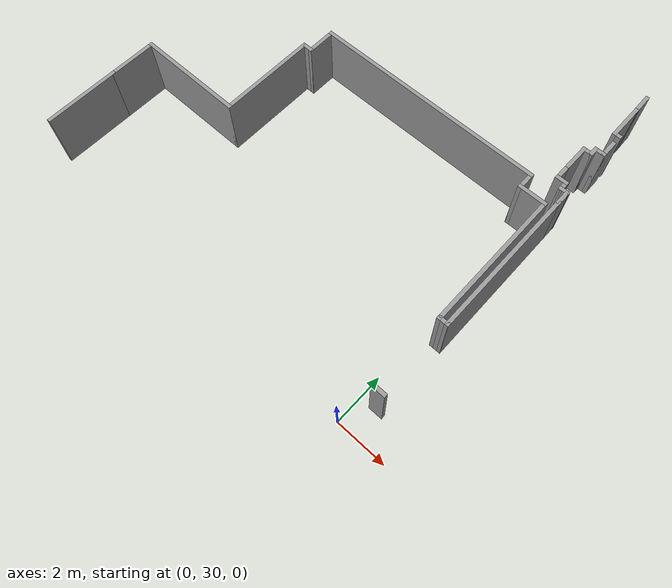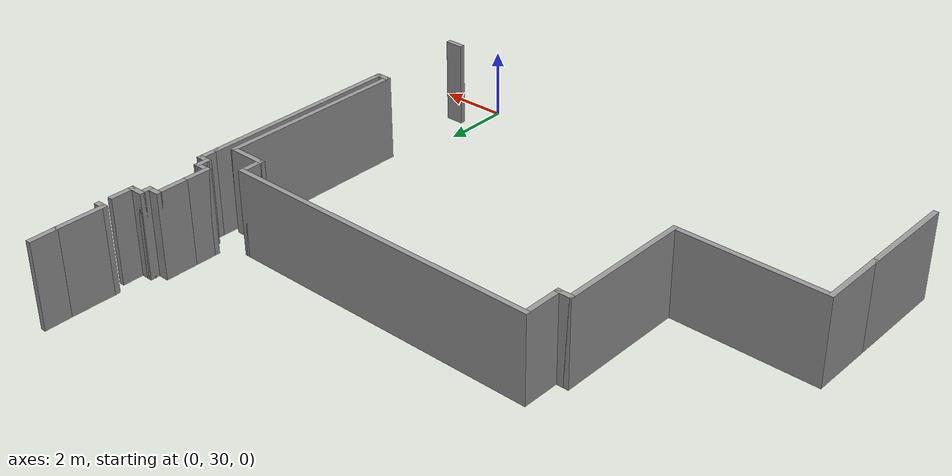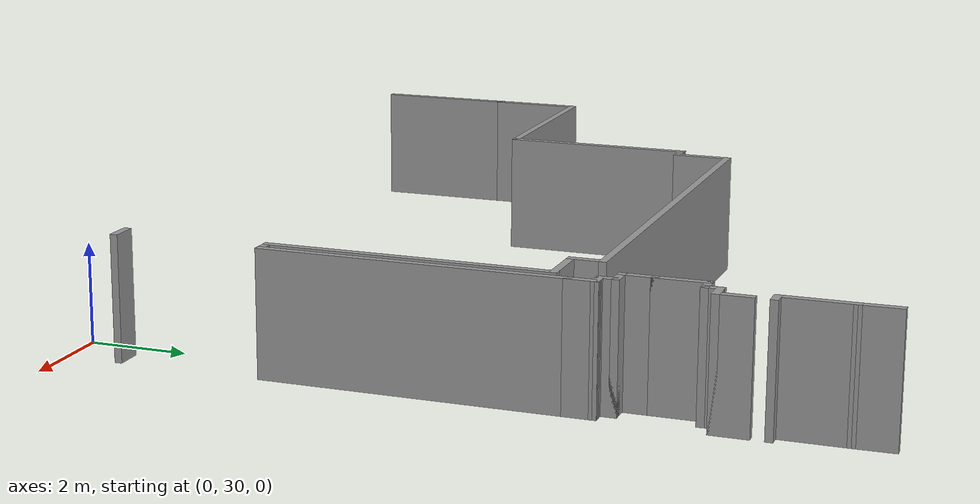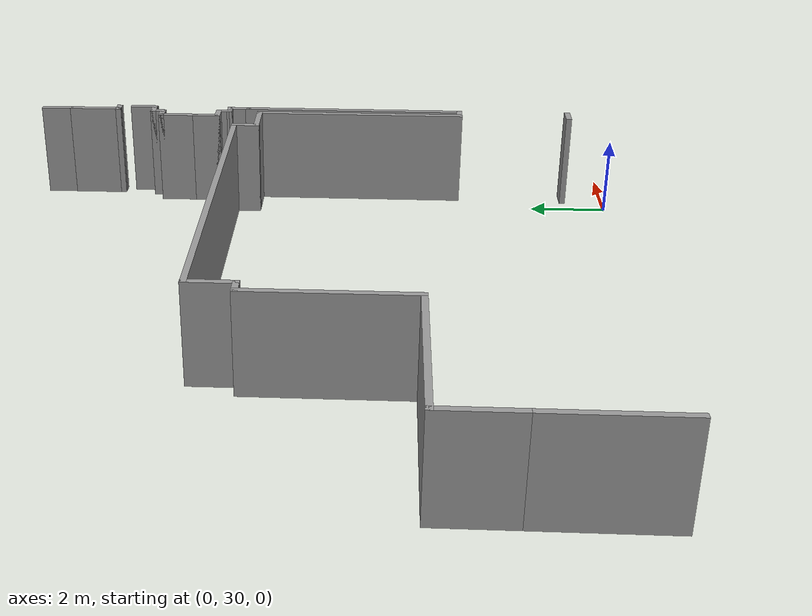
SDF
<sdf version="1.6">
 <model name="volen.world">
  <link name="Wall_303">
   <pose>0.69523 31.1034 0 0 -0 3.14159</pose>
   <visual name="Wall_303_Visual">
    <pose>0 0 1.25 0 -0 0</pose>
    <geometry><box><size>0.55 0.15 2.5</size></box></geometry>
    <material>
     <script><uri>file://media/materials/scripts/gazebo.material</uri><name>Gazebo/Grey</name></script>
     <ambient>1 1 1 1</ambient>
     <diffuse>0.7 0.7 0.7 1</diffuse>
     <specular>0.01 0.01 0.01 1</specular>
     <emissive>0 0 0 1</emissive>
    </material>
   </visual>
   <collision name="Wall_303_Collision">
    <pose>0 0 1.25 0 -0 0</pose>
    <geometry><box><size>0.55 0.15 2.5</size></box></geometry>
    <surface>
     <friction>
      <ode><mu>1</mu><mu2>1</mu2><fdir1>0 0 0</fdir1><slip1>0</slip1><slip2>0</slip2></ode>
      <torsional>
       <coefficient>1</coefficient>
       <patch_radius>0</patch_radius>
       <surface_radius>0</surface_radius>
       <use_patch_radius>1</use_patch_radius>
       <ode><slip>0</slip></ode>
      </torsional>
     </friction>
     <bounce><restitution_coefficient>0</restitution_coefficient><threshold>1e+06</threshold></bounce>
     <contact>
      <collide_without_contact>0</collide_without_contact>
      <collide_without_contact_bitmask>1</collide_without_contact_bitmask>
      <collide_bitmask>1</collide_bitmask>
      <ode>
       <soft_cfm>0</soft_cfm>
       <soft_erp>0.2</soft_erp>
       <kp>1e+13</kp>
       <kd>1</kd>
       <max_vel>0.01</max_vel>
       <min_depth>0</min_depth>
      </ode>
      <bullet>
       <split_impulse>1</split_impulse>
       <split_impulse_penetration_threshold>-0.01</split_impulse_penetration_threshold>
       <soft_cfm>0</soft_cfm>
       <soft_erp>0.2</soft_erp>
       <kp>1e+13</kp>
       <kd>1</kd>
      </bullet>
     </contact>
    </surface>
   </collision>
  </link>
  <link name="Wall_338">
   <pose>-14.3448 31.9614 0 0 -0 1.5708</pose>
   <visual name="Wall_338_Visual">
    <pose>0 0 1.25 0 -0 0</pose>
    <geometry><box><size>3 0.15 2.5</size></box></geometry>
    <material>
     <script><uri>file://media/materials/scripts/gazebo.material</uri><name>Gazebo/Grey</name></script>
     <ambient>1 1 1 1</ambient>
     <diffuse>0.7 0.7 0.7 1</diffuse>
     <specular>0.01 0.01 0.01 1</specular>
     <emissive>0 0 0 1</emissive>
    </material>
   </visual>
   <collision name="Wall_338_Collision">
    <pose>0 0 1.25 0 -0 0</pose>
    <geometry><box><size>3 0.15 2.5</size></box></geometry>
    <surface>
     <friction>
      <ode><mu>1</mu><mu2>1</mu2><fdir1>0 0 0</fdir1><slip1>0</slip1><slip2>0</slip2></ode>
      <torsional>
       <coefficient>1</coefficient>
       <patch_radius>0</patch_radius>
       <surface_radius>0</surface_radius>
       <use_patch_radius>1</use_patch_radius>
       <ode><slip>0</slip></ode>
      </torsional>
     </friction>
     <bounce><restitution_coefficient>0</restitution_coefficient><threshold>1e+06</threshold></bounce>
     <contact>
      <collide_without_contact>0</collide_without_contact>
      <collide_without_contact_bitmask>1</collide_without_contact_bitmask>
      <collide_bitmask>1</collide_bitmask>
      <ode>
       <soft_cfm>0</soft_cfm>
       <soft_erp>0.2</soft_erp>
       <kp>1e+13</kp>
       <kd>1</kd>
       <max_vel>0.01</max_vel>
       <min_depth>0</min_depth>
      </ode>
      <bullet>
       <split_impulse>1</split_impulse>
       <split_impulse_penetration_threshold>-0.01</split_impulse_penetration_threshold>
       <soft_cfm>0</soft_cfm>
       <soft_erp>0.2</soft_erp>
       <kp>1e+13</kp>
       <kd>1</kd>
      </bullet>
     </contact>
    </surface>
   </collision>
  </link>
  <link name="Wall_340">
   <pose>-14.3448 34.3049 0 0 -0 1.5708</pose>
   <visual name="Wall_340_Visual">
    <pose>0 0 1.25 0 -0 0</pose>
    <geometry><box><size>1.98692 0.15 2.5</size></box></geometry>
    <material>
     <script><uri>file://media/materials/scripts/gazebo.material</uri><name>Gazebo/Grey</name></script>
     <ambient>1 1 1 1</ambient>
     <diffuse>0.7 0.7 0.7 1</diffuse>
     <specular>0.01 0.01 0.01 1</specular>
     <emissive>0 0 0 1</emissive>
    </material>
   </visual>
   <collision name="Wall_340_Collision">
    <pose>0 0 1.25 0 -0 0</pose>
    <geometry><box><size>1.98692 0.15 2.5</size></box></geometry>
    <surface>
     <friction>
      <ode><mu>1</mu><mu2>1</mu2><fdir1>0 0 0</fdir1><slip1>0</slip1><slip2>0</slip2></ode>
      <torsional>
       <coefficient>1</coefficient>
       <patch_radius>0</patch_radius>
       <surface_radius>0</surface_radius>
       <use_patch_radius>1</use_patch_radius>
       <ode><slip>0</slip></ode>
      </torsional>
     </friction>
     <bounce><restitution_coefficient>0</restitution_coefficient><threshold>1e+06</threshold></bounce>
     <contact>
      <collide_without_contact>0</collide_without_contact>
      <collide_without_contact_bitmask>1</collide_without_contact_bitmask>
      <collide_bitmask>1</collide_bitmask>
      <ode>
       <soft_cfm>0</soft_cfm>
       <soft_erp>0.2</soft_erp>
       <kp>1e+13</kp>
       <kd>1</kd>
       <max_vel>0.01</max_vel>
       <min_depth>0</min_depth>
      </ode>
      <bullet>
       <split_impulse>1</split_impulse>
       <split_impulse_penetration_threshold>-0.01</split_impulse_penetration_threshold>
       <soft_cfm>0</soft_cfm>
       <soft_erp>0.2</soft_erp>
       <kp>1e+13</kp>
       <kd>1</kd>
      </bullet>
     </contact>
    </surface>
   </collision>
  </link>
  <link name="Wall_341">
   <pose>-12.2248 35.2234 0 0 -0 0</pose>
   <visual name="Wall_341_Visual">
    <pose>0 0 1.25 0 -0 0</pose>
    <geometry><box><size>4.39 0.15 2.5</size></box></geometry>
    <material>
     <script><uri>file://media/materials/scripts/gazebo.material</uri><name>Gazebo/Grey</name></script>
     <ambient>1 1 1 1</ambient>
     <diffuse>0.7 0.7 0.7 1</diffuse>
     <specular>0.01 0.01 0.01 1</specular>
     <emissive>0 0 0 1</emissive>
    </material>
   </visual>
   <collision name="Wall_341_Collision">
    <pose>0 0 1.25 0 -0 0</pose>
    <geometry><box><size>4.39 0.15 2.5</size></box></geometry>
    <surface>
     <friction>
      <ode><mu>1</mu><mu2>1</mu2><fdir1>0 0 0</fdir1><slip1>0</slip1><slip2>0</slip2></ode>
      <torsional>
       <coefficient>1</coefficient>
       <patch_radius>0</patch_radius>
       <surface_radius>0</surface_radius>
       <use_patch_radius>1</use_patch_radius>
       <ode><slip>0</slip></ode>
      </torsional>
     </friction>
     <bounce><restitution_coefficient>0</restitution_coefficient><threshold>1e+06</threshold></bounce>
     <contact>
      <collide_without_contact>0</collide_without_contact>
      <collide_without_contact_bitmask>1</collide_without_contact_bitmask>
      <collide_bitmask>1</collide_bitmask>
      <ode>
       <soft_cfm>0</soft_cfm>
       <soft_erp>0.2</soft_erp>
       <kp>1e+13</kp>
       <kd>1</kd>
       <max_vel>0.01</max_vel>
       <min_depth>0</min_depth>
      </ode>
      <bullet>
       <split_impulse>1</split_impulse>
       <split_impulse_penetration_threshold>-0.01</split_impulse_penetration_threshold>
       <soft_cfm>0</soft_cfm>
       <soft_erp>0.2</soft_erp>
       <kp>1e+13</kp>
       <kd>1</kd>
      </bullet>
     </contact>
    </surface>
   </collision>
  </link>
  <link name="Wall_343">
   <pose>-10.1048 37.1484 0 0 -0 1.5708</pose>
   <visual name="Wall_343_Visual">
    <pose>0 0 1.25 0 -0 0</pose>
    <geometry><box><size>4 0.15 2.5</size></box></geometry>
    <material>
     <script><uri>file://media/materials/scripts/gazebo.material</uri><name>Gazebo/Grey</name></script>
     <ambient>1 1 1 1</ambient>
     <diffuse>0.7 0.7 0.7 1</diffuse>
     <specular>0.01 0.01 0.01 1</specular>
     <emissive>0 0 0 1</emissive>
    </material>
   </visual>
   <collision name="Wall_343_Collision">
    <pose>0 0 1.25 0 -0 0</pose>
    <geometry><box><size>4 0.15 2.5</size></box></geometry>
    <surface>
     <friction>
      <ode><mu>1</mu><mu2>1</mu2><fdir1>0 0 0</fdir1><slip1>0</slip1><slip2>0</slip2></ode>
      <torsional>
       <coefficient>1</coefficient>
       <patch_radius>0</patch_radius>
       <surface_radius>0</surface_radius>
       <use_patch_radius>1</use_patch_radius>
       <ode><slip>0</slip></ode>
      </torsional>
     </friction>
     <bounce><restitution_coefficient>0</restitution_coefficient><threshold>1e+06</threshold></bounce>
     <contact>
      <collide_without_contact>0</collide_without_contact>
      <collide_without_contact_bitmask>1</collide_without_contact_bitmask>
      <collide_bitmask>1</collide_bitmask>
      <ode>
       <soft_cfm>0</soft_cfm>
       <soft_erp>0.2</soft_erp>
       <kp>1e+13</kp>
       <kd>1</kd>
       <max_vel>0.01</max_vel>
       <min_depth>0</min_depth>
      </ode>
      <bullet>
       <split_impulse>1</split_impulse>
       <split_impulse_penetration_threshold>-0.01</split_impulse_penetration_threshold>
       <soft_cfm>0</soft_cfm>
       <soft_erp>0.2</soft_erp>
       <kp>1e+13</kp>
       <kd>1</kd>
      </bullet>
     </contact>
    </surface>
   </collision>
  </link>
  <link name="Wall_344">
   <pose>-9.92977 39.0734 0 0 -0 0</pose>
   <visual name="Wall_344_Visual">
    <pose>0 0 1.25 0 -0 0</pose>
    <geometry><box><size>0.5 0.15 2.5</size></box></geometry>
    <material>
     <script><uri>file://media/materials/scripts/gazebo.material</uri><name>Gazebo/Grey</name></script>
     <ambient>1 1 1 1</ambient>
     <diffuse>0.7 0.7 0.7 1</diffuse>
     <specular>0.01 0.01 0.01 1</specular>
     <emissive>0 0 0 1</emissive>
    </material>
   </visual>
   <collision name="Wall_344_Collision">
    <pose>0 0 1.25 0 -0 0</pose>
    <geometry><box><size>0.5 0.15 2.5</size></box></geometry>
    <surface>
     <friction>
      <ode><mu>1</mu><mu2>1</mu2><fdir1>0 0 0</fdir1><slip1>0</slip1><slip2>0</slip2></ode>
      <torsional>
       <coefficient>1</coefficient>
       <patch_radius>0</patch_radius>
       <surface_radius>0</surface_radius>
       <use_patch_radius>1</use_patch_radius>
       <ode><slip>0</slip></ode>
      </torsional>
     </friction>
     <bounce><restitution_coefficient>0</restitution_coefficient><threshold>1e+06</threshold></bounce>
     <contact>
      <collide_without_contact>0</collide_without_contact>
      <collide_without_contact_bitmask>1</collide_without_contact_bitmask>
      <collide_bitmask>1</collide_bitmask>
      <ode>
       <soft_cfm>0</soft_cfm>
       <soft_erp>0.2</soft_erp>
       <kp>1e+13</kp>
       <kd>1</kd>
       <max_vel>0.01</max_vel>
       <min_depth>0</min_depth>
      </ode>
      <bullet>
       <split_impulse>1</split_impulse>
       <split_impulse_penetration_threshold>-0.01</split_impulse_penetration_threshold>
       <soft_cfm>0</soft_cfm>
       <soft_erp>0.2</soft_erp>
       <kp>1e+13</kp>
       <kd>1</kd>
      </bullet>
     </contact>
    </surface>
   </collision>
  </link>
  <link name="Wall_345">
   <pose>-9.75477 39.6234 0 0 -0 1.5708</pose>
   <visual name="Wall_345_Visual">
    <pose>0 0 1.25 0 -0 0</pose>
    <geometry><box><size>1.25 0.15 2.5</size></box></geometry>
    <material>
     <script><uri>file://media/materials/scripts/gazebo.material</uri><name>Gazebo/Grey</name></script>
     <ambient>1 1 1 1</ambient>
     <diffuse>0.7 0.7 0.7 1</diffuse>
     <specular>0.01 0.01 0.01 1</specular>
     <emissive>0 0 0 1</emissive>
    </material>
   </visual>
   <collision name="Wall_345_Collision">
    <pose>0 0 1.25 0 -0 0</pose>
    <geometry><box><size>1.25 0.15 2.5</size></box></geometry>
    <surface>
     <friction>
      <ode><mu>1</mu><mu2>1</mu2><fdir1>0 0 0</fdir1><slip1>0</slip1><slip2>0</slip2></ode>
      <torsional>
       <coefficient>1</coefficient>
       <patch_radius>0</patch_radius>
       <surface_radius>0</surface_radius>
       <use_patch_radius>1</use_patch_radius>
       <ode><slip>0</slip></ode>
      </torsional>
     </friction>
     <bounce><restitution_coefficient>0</restitution_coefficient><threshold>1e+06</threshold></bounce>
     <contact>
      <collide_without_contact>0</collide_without_contact>
      <collide_without_contact_bitmask>1</collide_without_contact_bitmask>
      <collide_bitmask>1</collide_bitmask>
      <ode>
       <soft_cfm>0</soft_cfm>
       <soft_erp>0.2</soft_erp>
       <kp>1e+13</kp>
       <kd>1</kd>
       <max_vel>0.01</max_vel>
       <min_depth>0</min_depth>
      </ode>
      <bullet>
       <split_impulse>1</split_impulse>
       <split_impulse_penetration_threshold>-0.01</split_impulse_penetration_threshold>
       <soft_cfm>0</soft_cfm>
       <soft_erp>0.2</soft_erp>
       <kp>1e+13</kp>
       <kd>1</kd>
      </bullet>
     </contact>
    </surface>
   </collision>
  </link>
  <link name="Wall_346">
   <pose>-5.09477 40.1734 0 0 -0 0</pose>
   <visual name="Wall_346_Visual">
    <pose>0 0 1.25 0 -0 0</pose>
    <geometry><box><size>9.47 0.15 2.5</size></box></geometry>
    <material>
     <script><uri>file://media/materials/scripts/gazebo.material</uri><name>Gazebo/Grey</name></script>
     <ambient>1 1 1 1</ambient>
     <diffuse>0.7 0.7 0.7 1</diffuse>
     <specular>0.01 0.01 0.01 1</specular>
     <emissive>0 0 0 1</emissive>
    </material>
   </visual>
   <collision name="Wall_346_Collision">
    <pose>0 0 1.25 0 -0 0</pose>
    <geometry><box><size>9.47 0.15 2.5</size></box></geometry>
    <surface>
     <friction>
      <ode><mu>1</mu><mu2>1</mu2><fdir1>0 0 0</fdir1><slip1>0</slip1><slip2>0</slip2></ode>
      <torsional>
       <coefficient>1</coefficient>
       <patch_radius>0</patch_radius>
       <surface_radius>0</surface_radius>
       <use_patch_radius>1</use_patch_radius>
       <ode><slip>0</slip></ode>
      </torsional>
     </friction>
     <bounce><restitution_coefficient>0</restitution_coefficient><threshold>1e+06</threshold></bounce>
     <contact>
      <collide_without_contact>0</collide_without_contact>
      <collide_without_contact_bitmask>1</collide_without_contact_bitmask>
      <collide_bitmask>1</collide_bitmask>
      <ode>
       <soft_cfm>0</soft_cfm>
       <soft_erp>0.2</soft_erp>
       <kp>1e+13</kp>
       <kd>1</kd>
       <max_vel>0.01</max_vel>
       <min_depth>0</min_depth>
      </ode>
      <bullet>
       <split_impulse>1</split_impulse>
       <split_impulse_penetration_threshold>-0.01</split_impulse_penetration_threshold>
       <soft_cfm>0</soft_cfm>
       <soft_erp>0.2</soft_erp>
       <kp>1e+13</kp>
       <kd>1</kd>
      </bullet>
     </contact>
    </surface>
   </collision>
  </link>
  <link name="Wall_348">
   <pose>-0.43477 39.8734 0 0 0 -1.5708</pose>
   <visual name="Wall_348_Visual">
    <pose>0 0 1.25 0 -0 0</pose>
    <geometry><box><size>0.75 0.15 2.5</size></box></geometry>
    <material>
     <script><uri>file://media/materials/scripts/gazebo.material</uri><name>Gazebo/Grey</name></script>
     <ambient>1 1 1 1</ambient>
     <diffuse>0.7 0.7 0.7 1</diffuse>
     <specular>0.01 0.01 0.01 1</specular>
     <emissive>0 0 0 1</emissive>
    </material>
   </visual>
   <collision name="Wall_348_Collision">
    <pose>0 0 1.25 0 -0 0</pose>
    <geometry><box><size>0.75 0.15 2.5</size></box></geometry>
    <surface>
     <friction>
      <ode><mu>1</mu><mu2>1</mu2><fdir1>0 0 0</fdir1><slip1>0</slip1><slip2>0</slip2></ode>
      <torsional>
       <coefficient>1</coefficient>
       <patch_radius>0</patch_radius>
       <surface_radius>0</surface_radius>
       <use_patch_radius>1</use_patch_radius>
       <ode><slip>0</slip></ode>
      </torsional>
     </friction>
     <bounce><restitution_coefficient>0</restitution_coefficient><threshold>1e+06</threshold></bounce>
     <contact>
      <collide_without_contact>0</collide_without_contact>
      <collide_without_contact_bitmask>1</collide_without_contact_bitmask>
      <collide_bitmask>1</collide_bitmask>
      <ode>
       <soft_cfm>0</soft_cfm>
       <soft_erp>0.2</soft_erp>
       <kp>1e+13</kp>
       <kd>1</kd>
       <max_vel>0.01</max_vel>
       <min_depth>0</min_depth>
      </ode>
      <bullet>
       <split_impulse>1</split_impulse>
       <split_impulse_penetration_threshold>-0.01</split_impulse_penetration_threshold>
       <soft_cfm>0</soft_cfm>
       <soft_erp>0.2</soft_erp>
       <kp>1e+13</kp>
       <kd>1</kd>
      </bullet>
     </contact>
    </surface>
   </collision>
  </link>
  <link name="Wall_349">
   <pose>0.06523 39.5734 0 0 -0 0</pose>
   <visual name="Wall_349_Visual">
    <pose>0 0 1.25 0 -0 0</pose>
    <geometry><box><size>1.15 0.15 2.5</size></box></geometry>
    <material>
     <script><uri>file://media/materials/scripts/gazebo.material</uri><name>Gazebo/Grey</name></script>
     <ambient>1 1 1 1</ambient>
     <diffuse>0.7 0.7 0.7 1</diffuse>
     <specular>0.01 0.01 0.01 1</specular>
     <emissive>0 0 0 1</emissive>
    </material>
   </visual>
   <collision name="Wall_349_Collision">
    <pose>0 0 1.25 0 -0 0</pose>
    <geometry><box><size>1.15 0.15 2.5</size></box></geometry>
    <surface>
     <friction>
      <ode><mu>1</mu><mu2>1</mu2><fdir1>0 0 0</fdir1><slip1>0</slip1><slip2>0</slip2></ode>
      <torsional>
       <coefficient>1</coefficient>
       <patch_radius>0</patch_radius>
       <surface_radius>0</surface_radius>
       <use_patch_radius>1</use_patch_radius>
       <ode><slip>0</slip></ode>
      </torsional>
     </friction>
     <bounce><restitution_coefficient>0</restitution_coefficient><threshold>1e+06</threshold></bounce>
     <contact>
      <collide_without_contact>0</collide_without_contact>
      <collide_without_contact_bitmask>1</collide_without_contact_bitmask>
      <collide_bitmask>1</collide_bitmask>
      <ode>
       <soft_cfm>0</soft_cfm>
       <soft_erp>0.2</soft_erp>
       <kp>1e+13</kp>
       <kd>1</kd>
       <max_vel>0.01</max_vel>
       <min_depth>0</min_depth>
      </ode>
      <bullet>
       <split_impulse>1</split_impulse>
       <split_impulse_penetration_threshold>-0.01</split_impulse_penetration_threshold>
       <soft_cfm>0</soft_cfm>
       <soft_erp>0.2</soft_erp>
       <kp>1e+13</kp>
       <kd>1</kd>
      </bullet>
     </contact>
    </surface>
   </collision>
  </link>
  <link name="Wall_352">
   <pose>0.56523 36.8234 0 0 0 -1.5708</pose>
   <visual name="Wall_352_Visual">
    <pose>0 0 1.25 0 -0 0</pose>
    <geometry><box><size>5.65 0.15 2.5</size></box></geometry>
    <material>
     <script><uri>file://media/materials/scripts/gazebo.material</uri><name>Gazebo/Grey</name></script>
     <ambient>1 1 1 1</ambient>
     <diffuse>0.7 0.7 0.7 1</diffuse>
     <specular>0.01 0.01 0.01 1</specular>
     <emissive>0 0 0 1</emissive>
    </material>
   </visual>
   <collision name="Wall_352_Collision">
    <pose>0 0 1.25 0 -0 0</pose>
    <geometry><box><size>5.65 0.15 2.5</size></box></geometry>
    <surface>
     <friction>
      <ode><mu>1</mu><mu2>1</mu2><fdir1>0 0 0</fdir1><slip1>0</slip1><slip2>0</slip2></ode>
      <torsional>
       <coefficient>1</coefficient>
       <patch_radius>0</patch_radius>
       <surface_radius>0</surface_radius>
       <use_patch_radius>1</use_patch_radius>
       <ode><slip>0</slip></ode>
      </torsional>
     </friction>
     <bounce><restitution_coefficient>0</restitution_coefficient><threshold>1e+06</threshold></bounce>
     <contact>
      <collide_without_contact>0</collide_without_contact>
      <collide_without_contact_bitmask>1</collide_without_contact_bitmask>
      <collide_bitmask>1</collide_bitmask>
      <ode>
       <soft_cfm>0</soft_cfm>
       <soft_erp>0.2</soft_erp>
       <kp>1e+13</kp>
       <kd>1</kd>
       <max_vel>0.01</max_vel>
       <min_depth>0</min_depth>
      </ode>
      <bullet>
       <split_impulse>1</split_impulse>
       <split_impulse_penetration_threshold>-0.01</split_impulse_penetration_threshold>
       <soft_cfm>0</soft_cfm>
       <soft_erp>0.2</soft_erp>
       <kp>1e+13</kp>
       <kd>1</kd>
      </bullet>
     </contact>
    </surface>
   </collision>
  </link>
  <link name="Wall_354">
   <pose>0.72023 34.0734 0 0 -0 0</pose>
   <visual name="Wall_354_Visual">
    <pose>0 0 1.25 0 -0 0</pose>
    <geometry><box><size>0.46 0.15 2.5</size></box></geometry>
    <material>
     <script><uri>file://media/materials/scripts/gazebo.material</uri><name>Gazebo/Grey</name></script>
     <ambient>1 1 1 1</ambient>
     <diffuse>0.7 0.7 0.7 1</diffuse>
     <specular>0.01 0.01 0.01 1</specular>
     <emissive>0 0 0 1</emissive>
    </material>
   </visual>
   <collision name="Wall_354_Collision">
    <pose>0 0 1.25 0 -0 0</pose>
    <geometry><box><size>0.46 0.15 2.5</size></box></geometry>
    <surface>
     <friction>
      <ode><mu>1</mu><mu2>1</mu2><fdir1>0 0 0</fdir1><slip1>0</slip1><slip2>0</slip2></ode>
      <torsional>
       <coefficient>1</coefficient>
       <patch_radius>0</patch_radius>
       <surface_radius>0</surface_radius>
       <use_patch_radius>1</use_patch_radius>
       <ode><slip>0</slip></ode>
      </torsional>
     </friction>
     <bounce><restitution_coefficient>0</restitution_coefficient><threshold>1e+06</threshold></bounce>
     <contact>
      <collide_without_contact>0</collide_without_contact>
      <collide_without_contact_bitmask>1</collide_without_contact_bitmask>
      <collide_bitmask>1</collide_bitmask>
      <ode>
       <soft_cfm>0</soft_cfm>
       <soft_erp>0.2</soft_erp>
       <kp>1e+13</kp>
       <kd>1</kd>
       <max_vel>0.01</max_vel>
       <min_depth>0</min_depth>
      </ode>
      <bullet>
       <split_impulse>1</split_impulse>
       <split_impulse_penetration_threshold>-0.01</split_impulse_penetration_threshold>
       <soft_cfm>0</soft_cfm>
       <soft_erp>0.2</soft_erp>
       <kp>1e+13</kp>
       <kd>1</kd>
      </bullet>
     </contact>
    </surface>
   </collision>
  </link>
  <link name="Wall_356">
   <pose>0.87523 36.9984 0 0 -0 1.5708</pose>
   <visual name="Wall_356_Visual">
    <pose>0 0 1.25 0 -0 0</pose>
    <geometry><box><size>6 0.15 2.5</size></box></geometry>
    <material>
     <script><uri>file://media/materials/scripts/gazebo.material</uri><name>Gazebo/Grey</name></script>
     <ambient>1 1 1 1</ambient>
     <diffuse>0.7 0.7 0.7 1</diffuse>
     <specular>0.01 0.01 0.01 1</specular>
     <emissive>0 0 0 1</emissive>
    </material>
   </visual>
   <collision name="Wall_356_Collision">
    <pose>0 0 1.25 0 -0 0</pose>
    <geometry><box><size>6 0.15 2.5</size></box></geometry>
    <surface>
     <friction>
      <ode><mu>1</mu><mu2>1</mu2><fdir1>0 0 0</fdir1><slip1>0</slip1><slip2>0</slip2></ode>
      <torsional>
       <coefficient>1</coefficient>
       <patch_radius>0</patch_radius>
       <surface_radius>0</surface_radius>
       <use_patch_radius>1</use_patch_radius>
       <ode><slip>0</slip></ode>
      </torsional>
     </friction>
     <bounce><restitution_coefficient>0</restitution_coefficient><threshold>1e+06</threshold></bounce>
     <contact>
      <collide_without_contact>0</collide_without_contact>
      <collide_without_contact_bitmask>1</collide_without_contact_bitmask>
      <collide_bitmask>1</collide_bitmask>
      <ode>
       <soft_cfm>0</soft_cfm>
       <soft_erp>0.2</soft_erp>
       <kp>1e+13</kp>
       <kd>1</kd>
       <max_vel>0.01</max_vel>
       <min_depth>0</min_depth>
      </ode>
      <bullet>
       <split_impulse>1</split_impulse>
       <split_impulse_penetration_threshold>-0.01</split_impulse_penetration_threshold>
       <soft_cfm>0</soft_cfm>
       <soft_erp>0.2</soft_erp>
       <kp>1e+13</kp>
       <kd>1</kd>
      </bullet>
     </contact>
    </surface>
   </collision>
  </link>
  <link name="Wall_358">
   <pose>0.87523 40.1734 0 0 -0 1.5708</pose>
   <visual name="Wall_358_Visual">
    <pose>0 0 1.25 0 -0 0</pose>
    <geometry><box><size>0.65 0.15 2.5</size></box></geometry>
    <material>
     <script><uri>file://media/materials/scripts/gazebo.material</uri><name>Gazebo/Grey</name></script>
     <ambient>1 1 1 1</ambient>
     <diffuse>0.7 0.7 0.7 1</diffuse>
     <specular>0.01 0.01 0.01 1</specular>
     <emissive>0 0 0 1</emissive>
    </material>
   </visual>
   <collision name="Wall_358_Collision">
    <pose>0 0 1.25 0 -0 0</pose>
    <geometry><box><size>0.65 0.15 2.5</size></box></geometry>
    <surface>
     <friction>
      <ode><mu>1</mu><mu2>1</mu2><fdir1>0 0 0</fdir1><slip1>0</slip1><slip2>0</slip2></ode>
      <torsional>
       <coefficient>1</coefficient>
       <patch_radius>0</patch_radius>
       <surface_radius>0</surface_radius>
       <use_patch_radius>1</use_patch_radius>
       <ode><slip>0</slip></ode>
      </torsional>
     </friction>
     <bounce><restitution_coefficient>0</restitution_coefficient><threshold>1e+06</threshold></bounce>
     <contact>
      <collide_without_contact>0</collide_without_contact>
      <collide_without_contact_bitmask>1</collide_without_contact_bitmask>
      <collide_bitmask>1</collide_bitmask>
      <ode>
       <soft_cfm>0</soft_cfm>
       <soft_erp>0.2</soft_erp>
       <kp>1e+13</kp>
       <kd>1</kd>
       <max_vel>0.01</max_vel>
       <min_depth>0</min_depth>
      </ode>
      <bullet>
       <split_impulse>1</split_impulse>
       <split_impulse_penetration_threshold>-0.01</split_impulse_penetration_threshold>
       <soft_cfm>0</soft_cfm>
       <soft_erp>0.2</soft_erp>
       <kp>1e+13</kp>
       <kd>1</kd>
      </bullet>
     </contact>
    </surface>
   </collision>
  </link>
  <link name="Wall_360">
   <pose>0.75223 40.4214 0 0 0 -3.12533</pose>
   <visual name="Wall_360_Visual">
    <pose>0 0 1.25 0 -0 0</pose>
    <geometry><box><size>0.395763 0.15 2.5</size></box></geometry>
    <material>
     <script><uri>file://media/materials/scripts/gazebo.material</uri><name>Gazebo/Grey</name></script>
     <ambient>1 1 1 1</ambient>
     <diffuse>0.7 0.7 0.7 1</diffuse>
     <specular>0.01 0.01 0.01 1</specular>
     <emissive>0 0 0 1</emissive>
    </material>
   </visual>
   <collision name="Wall_360_Collision">
    <pose>0 0 1.25 0 -0 0</pose>
    <geometry><box><size>0.395763 0.15 2.5</size></box></geometry>
    <surface>
     <friction>
      <ode><mu>1</mu><mu2>1</mu2><fdir1>0 0 0</fdir1><slip1>0</slip1><slip2>0</slip2></ode>
      <torsional>
       <coefficient>1</coefficient>
       <patch_radius>0</patch_radius>
       <surface_radius>0</surface_radius>
       <use_patch_radius>1</use_patch_radius>
       <ode><slip>0</slip></ode>
      </torsional>
     </friction>
     <bounce><restitution_coefficient>0</restitution_coefficient><threshold>1e+06</threshold></bounce>
     <contact>
      <collide_without_contact>0</collide_without_contact>
      <collide_without_contact_bitmask>1</collide_without_contact_bitmask>
      <collide_bitmask>1</collide_bitmask>
      <ode>
       <soft_cfm>0</soft_cfm>
       <soft_erp>0.2</soft_erp>
       <kp>1e+13</kp>
       <kd>1</kd>
       <max_vel>0.01</max_vel>
       <min_depth>0</min_depth>
      </ode>
      <bullet>
       <split_impulse>1</split_impulse>
       <split_impulse_penetration_threshold>-0.01</split_impulse_penetration_threshold>
       <soft_cfm>0</soft_cfm>
       <soft_erp>0.2</soft_erp>
       <kp>1e+13</kp>
       <kd>1</kd>
      </bullet>
     </contact>
    </surface>
   </collision>
  </link>
  <link name="Wall_362">
   <pose>0.62923 40.5694 0 0 -0 1.5708</pose>
   <visual name="Wall_362_Visual">
    <pose>0 0 1.25 0 -0 0</pose>
    <geometry><box><size>0.45 0.15 2.5</size></box></geometry>
    <material>
     <script><uri>file://media/materials/scripts/gazebo.material</uri><name>Gazebo/Grey</name></script>
     <ambient>1 1 1 1</ambient>
     <diffuse>0.7 0.7 0.7 1</diffuse>
     <specular>0.01 0.01 0.01 1</specular>
     <emissive>0 0 0 1</emissive>
    </material>
   </visual>
   <collision name="Wall_362_Collision">
    <pose>0 0 1.25 0 -0 0</pose>
    <geometry><box><size>0.45 0.15 2.5</size></box></geometry>
    <surface>
     <friction>
      <ode><mu>1</mu><mu2>1</mu2><fdir1>0 0 0</fdir1><slip1>0</slip1><slip2>0</slip2></ode>
      <torsional>
       <coefficient>1</coefficient>
       <patch_radius>0</patch_radius>
       <surface_radius>0</surface_radius>
       <use_patch_radius>1</use_patch_radius>
       <ode><slip>0</slip></ode>
      </torsional>
     </friction>
     <bounce><restitution_coefficient>0</restitution_coefficient><threshold>1e+06</threshold></bounce>
     <contact>
      <collide_without_contact>0</collide_without_contact>
      <collide_without_contact_bitmask>1</collide_without_contact_bitmask>
      <collide_bitmask>1</collide_bitmask>
      <ode>
       <soft_cfm>0</soft_cfm>
       <soft_erp>0.2</soft_erp>
       <kp>1e+13</kp>
       <kd>1</kd>
       <max_vel>0.01</max_vel>
       <min_depth>0</min_depth>
      </ode>
      <bullet>
       <split_impulse>1</split_impulse>
       <split_impulse_penetration_threshold>-0.01</split_impulse_penetration_threshold>
       <soft_cfm>0</soft_cfm>
       <soft_erp>0.2</soft_erp>
       <kp>1e+13</kp>
       <kd>1</kd>
      </bullet>
     </contact>
    </surface>
   </collision>
  </link>
  <link name="Wall_364">
   <pose>0.45423 40.7194 0 0 -0 3.14159</pose>
   <visual name="Wall_364_Visual">
    <pose>0 0 1.25 0 -0 0</pose>
    <geometry><box><size>0.5 0.15 2.5</size></box></geometry>
    <material>
     <script><uri>file://media/materials/scripts/gazebo.material</uri><name>Gazebo/Grey</name></script>
     <ambient>1 1 1 1</ambient>
     <diffuse>0.7 0.7 0.7 1</diffuse>
     <specular>0.01 0.01 0.01 1</specular>
     <emissive>0 0 0 1</emissive>
    </material>
   </visual>
   <collision name="Wall_364_Collision">
    <pose>0 0 1.25 0 -0 0</pose>
    <geometry><box><size>0.5 0.15 2.5</size></box></geometry>
    <surface>
     <friction>
      <ode><mu>1</mu><mu2>1</mu2><fdir1>0 0 0</fdir1><slip1>0</slip1><slip2>0</slip2></ode>
      <torsional>
       <coefficient>1</coefficient>
       <patch_radius>0</patch_radius>
       <surface_radius>0</surface_radius>
       <use_patch_radius>1</use_patch_radius>
       <ode><slip>0</slip></ode>
      </torsional>
     </friction>
     <bounce><restitution_coefficient>0</restitution_coefficient><threshold>1e+06</threshold></bounce>
     <contact>
      <collide_without_contact>0</collide_without_contact>
      <collide_without_contact_bitmask>1</collide_without_contact_bitmask>
      <collide_bitmask>1</collide_bitmask>
      <ode>
       <soft_cfm>0</soft_cfm>
       <soft_erp>0.2</soft_erp>
       <kp>1e+13</kp>
       <kd>1</kd>
       <max_vel>0.01</max_vel>
       <min_depth>0</min_depth>
      </ode>
      <bullet>
       <split_impulse>1</split_impulse>
       <split_impulse_penetration_threshold>-0.01</split_impulse_penetration_threshold>
       <soft_cfm>0</soft_cfm>
       <soft_erp>0.2</soft_erp>
       <kp>1e+13</kp>
       <kd>1</kd>
      </bullet>
     </contact>
    </surface>
   </collision>
  </link>
  <link name="Wall_365">
   <pose>0.27923 41.0194 0 0 -0 1.5708</pose>
   <visual name="Wall_365_Visual">
    <pose>0 0 1.25 0 -0 0</pose>
    <geometry><box><size>0.75 0.15 2.5</size></box></geometry>
    <material>
     <script><uri>file://media/materials/scripts/gazebo.material</uri><name>Gazebo/Grey</name></script>
     <ambient>1 1 1 1</ambient>
     <diffuse>0.7 0.7 0.7 1</diffuse>
     <specular>0.01 0.01 0.01 1</specular>
     <emissive>0 0 0 1</emissive>
    </material>
   </visual>
   <collision name="Wall_365_Collision">
    <pose>0 0 1.25 0 -0 0</pose>
    <geometry><box><size>0.75 0.15 2.5</size></box></geometry>
    <surface>
     <friction>
      <ode><mu>1</mu><mu2>1</mu2><fdir1>0 0 0</fdir1><slip1>0</slip1><slip2>0</slip2></ode>
      <torsional>
       <coefficient>1</coefficient>
       <patch_radius>0</patch_radius>
       <surface_radius>0</surface_radius>
       <use_patch_radius>1</use_patch_radius>
       <ode><slip>0</slip></ode>
      </torsional>
     </friction>
     <bounce><restitution_coefficient>0</restitution_coefficient><threshold>1e+06</threshold></bounce>
     <contact>
      <collide_without_contact>0</collide_without_contact>
      <collide_without_contact_bitmask>1</collide_without_contact_bitmask>
      <collide_bitmask>1</collide_bitmask>
      <ode>
       <soft_cfm>0</soft_cfm>
       <soft_erp>0.2</soft_erp>
       <kp>1e+13</kp>
       <kd>1</kd>
       <max_vel>0.01</max_vel>
       <min_depth>0</min_depth>
      </ode>
      <bullet>
       <split_impulse>1</split_impulse>
       <split_impulse_penetration_threshold>-0.01</split_impulse_penetration_threshold>
       <soft_cfm>0</soft_cfm>
       <soft_erp>0.2</soft_erp>
       <kp>1e+13</kp>
       <kd>1</kd>
      </bullet>
     </contact>
    </surface>
   </collision>
  </link>
  <link name="Wall_367">
   <pose>0.27923 41.7944 0 0 -0 1.5708</pose>
   <visual name="Wall_367_Visual">
    <pose>0 0 1.25 0 -0 0</pose>
    <geometry><box><size>1.1 0.15 2.5</size></box></geometry>
    <material>
     <script><uri>file://media/materials/scripts/gazebo.material</uri><name>Gazebo/Grey</name></script>
     <ambient>1 1 1 1</ambient>
     <diffuse>0.7 0.7 0.7 1</diffuse>
     <specular>0.01 0.01 0.01 1</specular>
     <emissive>0 0 0 1</emissive>
    </material>
   </visual>
   <collision name="Wall_367_Collision">
    <pose>0 0 1.25 0 -0 0</pose>
    <geometry><box><size>1.1 0.15 2.5</size></box></geometry>
    <surface>
     <friction>
      <ode><mu>1</mu><mu2>1</mu2><fdir1>0 0 0</fdir1><slip1>0</slip1><slip2>0</slip2></ode>
      <torsional>
       <coefficient>1</coefficient>
       <patch_radius>0</patch_radius>
       <surface_radius>0</surface_radius>
       <use_patch_radius>1</use_patch_radius>
       <ode><slip>0</slip></ode>
      </torsional>
     </friction>
     <bounce><restitution_coefficient>0</restitution_coefficient><threshold>1e+06</threshold></bounce>
     <contact>
      <collide_without_contact>0</collide_without_contact>
      <collide_without_contact_bitmask>1</collide_without_contact_bitmask>
      <collide_bitmask>1</collide_bitmask>
      <ode>
       <soft_cfm>0</soft_cfm>
       <soft_erp>0.2</soft_erp>
       <kp>1e+13</kp>
       <kd>1</kd>
       <max_vel>0.01</max_vel>
       <min_depth>0</min_depth>
      </ode>
      <bullet>
       <split_impulse>1</split_impulse>
       <split_impulse_penetration_threshold>-0.01</split_impulse_penetration_threshold>
       <soft_cfm>0</soft_cfm>
       <soft_erp>0.2</soft_erp>
       <kp>1e+13</kp>
       <kd>1</kd>
      </bullet>
     </contact>
    </surface>
   </collision>
  </link>
  <link name="Wall_369">
   <pose>0.42923 42.2694 0 0 -0 0</pose>
   <visual name="Wall_369_Visual">
    <pose>0 0 1.25 0 -0 0</pose>
    <geometry><box><size>0.45 0.15 2.5</size></box></geometry>
    <material>
     <script><uri>file://media/materials/scripts/gazebo.material</uri><name>Gazebo/Grey</name></script>
     <ambient>1 1 1 1</ambient>
     <diffuse>0.7 0.7 0.7 1</diffuse>
     <specular>0.01 0.01 0.01 1</specular>
     <emissive>0 0 0 1</emissive>
    </material>
   </visual>
   <collision name="Wall_369_Collision">
    <pose>0 0 1.25 0 -0 0</pose>
    <geometry><box><size>0.45 0.15 2.5</size></box></geometry>
    <surface>
     <friction>
      <ode><mu>1</mu><mu2>1</mu2><fdir1>0 0 0</fdir1><slip1>0</slip1><slip2>0</slip2></ode>
      <torsional>
       <coefficient>1</coefficient>
       <patch_radius>0</patch_radius>
       <surface_radius>0</surface_radius>
       <use_patch_radius>1</use_patch_radius>
       <ode><slip>0</slip></ode>
      </torsional>
     </friction>
     <bounce><restitution_coefficient>0</restitution_coefficient><threshold>1e+06</threshold></bounce>
     <contact>
      <collide_without_contact>0</collide_without_contact>
      <collide_without_contact_bitmask>1</collide_without_contact_bitmask>
      <collide_bitmask>1</collide_bitmask>
      <ode>
       <soft_cfm>0</soft_cfm>
       <soft_erp>0.2</soft_erp>
       <kp>1e+13</kp>
       <kd>1</kd>
       <max_vel>0.01</max_vel>
       <min_depth>0</min_depth>
      </ode>
      <bullet>
       <split_impulse>1</split_impulse>
       <split_impulse_penetration_threshold>-0.01</split_impulse_penetration_threshold>
       <soft_cfm>0</soft_cfm>
       <soft_erp>0.2</soft_erp>
       <kp>1e+13</kp>
       <kd>1</kd>
      </bullet>
     </contact>
    </surface>
   </collision>
  </link>
  <link name="Wall_371">
   <pose>0.57923 42.4044 0 0 -0 1.5708</pose>
   <visual name="Wall_371_Visual">
    <pose>0 0 1.25 0 -0 0</pose>
    <geometry><box><size>0.42 0.15 2.5</size></box></geometry>
    <material>
     <script><uri>file://media/materials/scripts/gazebo.material</uri><name>Gazebo/Grey</name></script>
     <ambient>1 1 1 1</ambient>
     <diffuse>0.7 0.7 0.7 1</diffuse>
     <specular>0.01 0.01 0.01 1</specular>
     <emissive>0 0 0 1</emissive>
    </material>
   </visual>
   <collision name="Wall_371_Collision">
    <pose>0 0 1.25 0 -0 0</pose>
    <geometry><box><size>0.42 0.15 2.5</size></box></geometry>
    <surface>
     <friction>
      <ode><mu>1</mu><mu2>1</mu2><fdir1>0 0 0</fdir1><slip1>0</slip1><slip2>0</slip2></ode>
      <torsional>
       <coefficient>1</coefficient>
       <patch_radius>0</patch_radius>
       <surface_radius>0</surface_radius>
       <use_patch_radius>1</use_patch_radius>
       <ode><slip>0</slip></ode>
      </torsional>
     </friction>
     <bounce><restitution_coefficient>0</restitution_coefficient><threshold>1e+06</threshold></bounce>
     <contact>
      <collide_without_contact>0</collide_without_contact>
      <collide_without_contact_bitmask>1</collide_without_contact_bitmask>
      <collide_bitmask>1</collide_bitmask>
      <ode>
       <soft_cfm>0</soft_cfm>
       <soft_erp>0.2</soft_erp>
       <kp>1e+13</kp>
       <kd>1</kd>
       <max_vel>0.01</max_vel>
       <min_depth>0</min_depth>
      </ode>
      <bullet>
       <split_impulse>1</split_impulse>
       <split_impulse_penetration_threshold>-0.01</split_impulse_penetration_threshold>
       <soft_cfm>0</soft_cfm>
       <soft_erp>0.2</soft_erp>
       <kp>1e+13</kp>
       <kd>1</kd>
      </bullet>
     </contact>
    </surface>
   </collision>
  </link>
  <link name="Wall_373">
   <pose>0.74423 42.5394 0 0 -0 0</pose>
   <visual name="Wall_373_Visual">
    <pose>0 0 1.25 0 -0 0</pose>
    <geometry><box><size>0.48 0.15 2.5</size></box></geometry>
    <material>
     <script><uri>file://media/materials/scripts/gazebo.material</uri><name>Gazebo/Grey</name></script>
     <ambient>1 1 1 1</ambient>
     <diffuse>0.7 0.7 0.7 1</diffuse>
     <specular>0.01 0.01 0.01 1</specular>
     <emissive>0 0 0 1</emissive>
    </material>
   </visual>
   <collision name="Wall_373_Collision">
    <pose>0 0 1.25 0 -0 0</pose>
    <geometry><box><size>0.48 0.15 2.5</size></box></geometry>
    <surface>
     <friction>
      <ode><mu>1</mu><mu2>1</mu2><fdir1>0 0 0</fdir1><slip1>0</slip1><slip2>0</slip2></ode>
      <torsional>
       <coefficient>1</coefficient>
       <patch_radius>0</patch_radius>
       <surface_radius>0</surface_radius>
       <use_patch_radius>1</use_patch_radius>
       <ode><slip>0</slip></ode>
      </torsional>
     </friction>
     <bounce><restitution_coefficient>0</restitution_coefficient><threshold>1e+06</threshold></bounce>
     <contact>
      <collide_without_contact>0</collide_without_contact>
      <collide_without_contact_bitmask>1</collide_without_contact_bitmask>
      <collide_bitmask>1</collide_bitmask>
      <ode>
       <soft_cfm>0</soft_cfm>
       <soft_erp>0.2</soft_erp>
       <kp>1e+13</kp>
       <kd>1</kd>
       <max_vel>0.01</max_vel>
       <min_depth>0</min_depth>
      </ode>
      <bullet>
       <split_impulse>1</split_impulse>
       <split_impulse_penetration_threshold>-0.01</split_impulse_penetration_threshold>
       <soft_cfm>0</soft_cfm>
       <soft_erp>0.2</soft_erp>
       <kp>1e+13</kp>
       <kd>1</kd>
      </bullet>
     </contact>
    </surface>
   </collision>
  </link>
  <link name="Wall_375">
   <pose>0.90923 42.8394 0 0 -0 1.5708</pose>
   <visual name="Wall_375_Visual">
    <pose>0 0 1.25 0 -0 0</pose>
    <geometry><box><size>0.75 0.15 2.5</size></box></geometry>
    <material>
     <script><uri>file://media/materials/scripts/gazebo.material</uri><name>Gazebo/Grey</name></script>
     <ambient>1 1 1 1</ambient>
     <diffuse>0.7 0.7 0.7 1</diffuse>
     <specular>0.01 0.01 0.01 1</specular>
     <emissive>0 0 0 1</emissive>
    </material>
   </visual>
   <collision name="Wall_375_Collision">
    <pose>0 0 1.25 0 -0 0</pose>
    <geometry><box><size>0.75 0.15 2.5</size></box></geometry>
    <surface>
     <friction>
      <ode><mu>1</mu><mu2>1</mu2><fdir1>0 0 0</fdir1><slip1>0</slip1><slip2>0</slip2></ode>
      <torsional>
       <coefficient>1</coefficient>
       <patch_radius>0</patch_radius>
       <surface_radius>0</surface_radius>
       <use_patch_radius>1</use_patch_radius>
       <ode><slip>0</slip></ode>
      </torsional>
     </friction>
     <bounce><restitution_coefficient>0</restitution_coefficient><threshold>1e+06</threshold></bounce>
     <contact>
      <collide_without_contact>0</collide_without_contact>
      <collide_without_contact_bitmask>1</collide_without_contact_bitmask>
      <collide_bitmask>1</collide_bitmask>
      <ode>
       <soft_cfm>0</soft_cfm>
       <soft_erp>0.2</soft_erp>
       <kp>1e+13</kp>
       <kd>1</kd>
       <max_vel>0.01</max_vel>
       <min_depth>0</min_depth>
      </ode>
      <bullet>
       <split_impulse>1</split_impulse>
       <split_impulse_penetration_threshold>-0.01</split_impulse_penetration_threshold>
       <soft_cfm>0</soft_cfm>
       <soft_erp>0.2</soft_erp>
       <kp>1e+13</kp>
       <kd>1</kd>
      </bullet>
     </contact>
    </surface>
   </collision>
  </link>
  <link name="Wall_379">
   <pose>0.80923 43.5394 0 0 -0 3.14159</pose>
   <visual name="Wall_379_Visual">
    <pose>0 0 1.25 0 -0 0</pose>
    <geometry><box><size>0.35 0.15 2.5</size></box></geometry>
    <material>
     <script><uri>file://media/materials/scripts/gazebo.material</uri><name>Gazebo/Grey</name></script>
     <ambient>1 1 1 1</ambient>
     <diffuse>0.7 0.7 0.7 1</diffuse>
     <specular>0.01 0.01 0.01 1</specular>
     <emissive>0 0 0 1</emissive>
    </material>
   </visual>
   <collision name="Wall_379_Collision">
    <pose>0 0 1.25 0 -0 0</pose>
    <geometry><box><size>0.35 0.15 2.5</size></box></geometry>
    <surface>
     <friction>
      <ode><mu>1</mu><mu2>1</mu2><fdir1>0 0 0</fdir1><slip1>0</slip1><slip2>0</slip2></ode>
      <torsional>
       <coefficient>1</coefficient>
       <patch_radius>0</patch_radius>
       <surface_radius>0</surface_radius>
       <use_patch_radius>1</use_patch_radius>
       <ode><slip>0</slip></ode>
      </torsional>
     </friction>
     <bounce><restitution_coefficient>0</restitution_coefficient><threshold>1e+06</threshold></bounce>
     <contact>
      <collide_without_contact>0</collide_without_contact>
      <collide_without_contact_bitmask>1</collide_without_contact_bitmask>
      <collide_bitmask>1</collide_bitmask>
      <ode>
       <soft_cfm>0</soft_cfm>
       <soft_erp>0.2</soft_erp>
       <kp>1e+13</kp>
       <kd>1</kd>
       <max_vel>0.01</max_vel>
       <min_depth>0</min_depth>
      </ode>
      <bullet>
       <split_impulse>1</split_impulse>
       <split_impulse_penetration_threshold>-0.01</split_impulse_penetration_threshold>
       <soft_cfm>0</soft_cfm>
       <soft_erp>0.2</soft_erp>
       <kp>1e+13</kp>
       <kd>1</kd>
      </bullet>
     </contact>
    </surface>
   </collision>
  </link>
  <link name="Wall_383">
   <pose>0.70923 44.2144 0 0 -0 1.5708</pose>
   <visual name="Wall_383_Visual">
    <pose>0 0 1.25 0 -0 0</pose>
    <geometry><box><size>1.5 0.15 2.5</size></box></geometry>
    <material>
     <script><uri>file://media/materials/scripts/gazebo.material</uri><name>Gazebo/Grey</name></script>
     <ambient>1 1 1 1</ambient>
     <diffuse>0.7 0.7 0.7 1</diffuse>
     <specular>0.01 0.01 0.01 1</specular>
     <emissive>0 0 0 1</emissive>
    </material>
   </visual>
   <collision name="Wall_383_Collision">
    <pose>0 0 1.25 0 -0 0</pose>
    <geometry><box><size>1.5 0.15 2.5</size></box></geometry>
    <surface>
     <friction>
      <ode><mu>1</mu><mu2>1</mu2><fdir1>0 0 0</fdir1><slip1>0</slip1><slip2>0</slip2></ode>
      <torsional>
       <coefficient>1</coefficient>
       <patch_radius>0</patch_radius>
       <surface_radius>0</surface_radius>
       <use_patch_radius>1</use_patch_radius>
       <ode><slip>0</slip></ode>
      </torsional>
     </friction>
     <bounce><restitution_coefficient>0</restitution_coefficient><threshold>1e+06</threshold></bounce>
     <contact>
      <collide_without_contact>0</collide_without_contact>
      <collide_without_contact_bitmask>1</collide_without_contact_bitmask>
      <collide_bitmask>1</collide_bitmask>
      <ode>
       <soft_cfm>0</soft_cfm>
       <soft_erp>0.2</soft_erp>
       <kp>1e+13</kp>
       <kd>1</kd>
       <max_vel>0.01</max_vel>
       <min_depth>0</min_depth>
      </ode>
      <bullet>
       <split_impulse>1</split_impulse>
       <split_impulse_penetration_threshold>-0.01</split_impulse_penetration_threshold>
       <soft_cfm>0</soft_cfm>
       <soft_erp>0.2</soft_erp>
       <kp>1e+13</kp>
       <kd>1</kd>
      </bullet>
     </contact>
    </surface>
   </collision>
  </link>
  <link name="Wall_385">
   <pose>0.702336 45.2443 0 0 -0 1.59022</pose>
   <visual name="Wall_385_Visual">
    <pose>0 0 1.25 0 -0 0</pose>
    <geometry><box><size>0.859969 0.15 2.5</size></box></geometry>
    <material>
     <script><uri>file://media/materials/scripts/gazebo.material</uri><name>Gazebo/Grey</name></script>
     <ambient>1 1 1 1</ambient>
     <diffuse>0.7 0.7 0.7 1</diffuse>
     <specular>0.01 0.01 0.01 1</specular>
     <emissive>0 0 0 1</emissive>
    </material>
   </visual>
   <collision name="Wall_385_Collision">
    <pose>0 0 1.25 0 -0 0</pose>
    <geometry><box><size>0.859969 0.15 2.5</size></box></geometry>
    <surface>
     <friction>
      <ode><mu>1</mu><mu2>1</mu2><fdir1>0 0 0</fdir1><slip1>0</slip1><slip2>0</slip2></ode>
      <torsional>
       <coefficient>1</coefficient>
       <patch_radius>0</patch_radius>
       <surface_radius>0</surface_radius>
       <use_patch_radius>1</use_patch_radius>
       <ode><slip>0</slip></ode>
      </torsional>
     </friction>
     <bounce><restitution_coefficient>0</restitution_coefficient><threshold>1e+06</threshold></bounce>
     <contact>
      <collide_without_contact>0</collide_without_contact>
      <collide_without_contact_bitmask>1</collide_without_contact_bitmask>
      <collide_bitmask>1</collide_bitmask>
      <ode>
       <soft_cfm>0</soft_cfm>
       <soft_erp>0.2</soft_erp>
       <kp>1e+13</kp>
       <kd>1</kd>
       <max_vel>0.01</max_vel>
       <min_depth>0</min_depth>
      </ode>
      <bullet>
       <split_impulse>1</split_impulse>
       <split_impulse_penetration_threshold>-0.01</split_impulse_penetration_threshold>
       <soft_cfm>0</soft_cfm>
       <soft_erp>0.2</soft_erp>
       <kp>1e+13</kp>
       <kd>1</kd>
      </bullet>
     </contact>
    </surface>
   </collision>
  </link>
  <static>1</static>
 </model>
</sdf>
